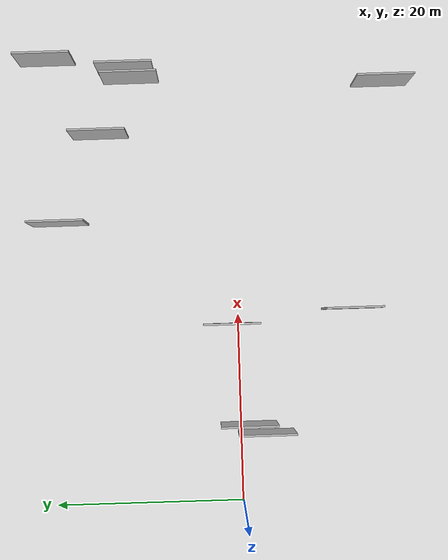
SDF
<sdf version="1.6">
 <world name="default">
  <scene>
   <sky><clouds><speed>12</speed></clouds></sky>
   <ambient>0.4 0.4 0.4 1</ambient>
   <background>0.7 0.7 0.7 1</background>
   <shadows>1</shadows>
  </scene>
  <gravity>0 0 -9.8066</gravity>
  <magnetic_field>6e-06 2.3e-05 -4.2e-05</magnetic_field>
  <physics default="0" name="default_physics" type="ode">
   <ode>
    <solver>
     <type>quick</type>
     <iters>10</iters>
     <sor>1.0</sor>
     <use_dynamic_moi_rescaling>0</use_dynamic_moi_rescaling>
    </solver>
    <constraints>
     <cfm>0</cfm>
     <erp>0.2</erp>
     <contact_max_correcting_vel>100</contact_max_correcting_vel>
     <contact_surface_layer>0.001</contact_surface_layer>
    </constraints>
   </ode>
   <max_step_size>0.004</max_step_size>
   <real_time_factor>1</real_time_factor>
   <real_time_update_rate>250</real_time_update_rate>
  </physics>
  <light name="sun" type="directional">
   <pose>0 0 10 0 0 0</pose>
   <diffuse>0.8 0.8 0.8 1</diffuse>
   <specular>0.2 0.2 0.2 1</specular>
   <attenuation>
    <range>1000</range>
    <constant>0.9</constant>
    <linear>0.01</linear>
    <quadratic>0.001</quadratic>
   </attenuation>
   <direction>-0.5 0.1 -0.9</direction>
  </light>
  <model name="grey_wall_1">
   <static>1</static>
   <pose>47.7840 19.8525 0.0 0.000000 0.000000 1.570796</pose>
   <link name="link">
    <pose>0 0 3.00 0 0 0</pose>
    <collision name="collision"><geometry><box><size>6.00 0.2 6.00</size></box></geometry></collision>
    <visual name="visual">
     <cast_shadows>0</cast_shadows>
     <geometry><box><size>6.00 0.2 6.00</size></box></geometry>
     <material>
      <script>
       <uri>model://HANNAS_wall/materials/scripts</uri>
       <uri>model://HANNAS_wall/materials/textures</uri>
       <name>vrc/HANNAS_wall</name>
      </script>
     </material>
    </visual>
   </link>
  </model>
  <model name="grey_wall_2">
   <static>1</static>
   <pose>45.5725 10.8438 0.0 0.000000 0.000000 1.570796</pose>
   <link name="link">
    <pose>0 0 3.00 0 0 0</pose>
    <collision name="collision"><geometry><box><size>6.00 0.2 6.00</size></box></geometry></collision>
    <visual name="visual">
     <cast_shadows>0</cast_shadows>
     <geometry><box><size>6.00 0.2 6.00</size></box></geometry>
     <material>
      <script>
       <uri>model://HANNAS_wall/materials/scripts</uri>
       <uri>model://HANNAS_wall/materials/textures</uri>
       <name>vrc/HANNAS_wall</name>
      </script>
     </material>
    </visual>
   </link>
  </model>
  <model name="grey_wall_3">
   <static>1</static>
   <pose>20.3226 -12.0446 0.0 0.000000 0.000000 1.570796</pose>
   <link name="link">
    <pose>0 0 3.00 0 0 0</pose>
    <collision name="collision"><geometry><box><size>6.00 0.2 6.00</size></box></geometry></collision>
    <visual name="visual">
     <cast_shadows>0</cast_shadows>
     <geometry><box><size>6.00 0.2 6.00</size></box></geometry>
     <material>
      <script>
       <uri>model://HANNAS_wall/materials/scripts</uri>
       <uri>model://HANNAS_wall/materials/textures</uri>
       <name>vrc/HANNAS_wall</name>
      </script>
     </material>
    </visual>
   </link>
  </model>
  <model name="grey_wall_4">
   <static>1</static>
   <pose>18.9882 0.7678 0.0 0.000000 0.000000 1.570796</pose>
   <link name="link">
    <pose>0 0 3.00 0 0 0</pose>
    <collision name="collision"><geometry><box><size>6.00 0.2 6.00</size></box></geometry></collision>
    <visual name="visual">
     <cast_shadows>0</cast_shadows>
     <geometry><box><size>6.00 0.2 6.00</size></box></geometry>
     <material>
      <script>
       <uri>model://HANNAS_wall/materials/scripts</uri>
       <uri>model://HANNAS_wall/materials/textures</uri>
       <name>vrc/HANNAS_wall</name>
      </script>
     </material>
    </visual>
   </link>
  </model>
  <model name="grey_wall_5">
   <static>1</static>
   <pose>44.4521 -16.0047 0.0 0.000000 0.000000 1.570796</pose>
   <link name="link">
    <pose>0 0 3.00 0 0 0</pose>
    <collision name="collision"><geometry><box><size>6.00 0.2 6.00</size></box></geometry></collision>
    <visual name="visual">
     <cast_shadows>0</cast_shadows>
     <geometry><box><size>6.00 0.2 6.00</size></box></geometry>
     <material>
      <script>
       <uri>model://HANNAS_wall/materials/scripts</uri>
       <uri>model://HANNAS_wall/materials/textures</uri>
       <name>vrc/HANNAS_wall</name>
      </script>
     </material>
    </visual>
   </link>
  </model>
  <model name="grey_wall_6">
   <static>1</static>
   <pose>30.2181 18.8475 0.0 0.000000 0.000000 1.570796</pose>
   <link name="link">
    <pose>0 0 3.00 0 0 0</pose>
    <collision name="collision"><geometry><box><size>6.00 0.2 6.00</size></box></geometry></collision>
    <visual name="visual">
     <cast_shadows>0</cast_shadows>
     <geometry><box><size>6.00 0.2 6.00</size></box></geometry>
     <material>
      <script>
       <uri>model://HANNAS_wall/materials/scripts</uri>
       <uri>model://HANNAS_wall/materials/textures</uri>
       <name>vrc/HANNAS_wall</name>
      </script>
     </material>
    </visual>
   </link>
  </model>
  <model name="grey_wall_7">
   <static>1</static>
   <pose>46.5866 11.3165 0.0 0.000000 0.000000 1.570796</pose>
   <link name="link">
    <pose>0 0 3.00 0 0 0</pose>
    <collision name="collision"><geometry><box><size>6.00 0.2 6.00</size></box></geometry></collision>
    <visual name="visual">
     <cast_shadows>0</cast_shadows>
     <geometry><box><size>6.00 0.2 6.00</size></box></geometry>
     <material>
      <script>
       <uri>model://HANNAS_wall/materials/scripts</uri>
       <uri>model://HANNAS_wall/materials/textures</uri>
       <name>vrc/HANNAS_wall</name>
      </script>
     </material>
    </visual>
   </link>
  </model>
  <model name="grey_wall_8">
   <static>1</static>
   <pose>8.3588 -0.7776 0.0 0.000000 0.000000 1.570796</pose>
   <link name="link">
    <pose>0 0 3.00 0 0 0</pose>
    <collision name="collision"><geometry><box><size>6.00 0.2 6.00</size></box></geometry></collision>
    <visual name="visual">
     <cast_shadows>0</cast_shadows>
     <geometry><box><size>6.00 0.2 6.00</size></box></geometry>
     <material>
      <script>
       <uri>model://HANNAS_wall/materials/scripts</uri>
       <uri>model://HANNAS_wall/materials/textures</uri>
       <name>vrc/HANNAS_wall</name>
      </script>
     </material>
    </visual>
   </link>
  </model>
  <model name="grey_wall_9">
   <static>1</static>
   <pose>7.4568 -2.6143 0.0 0.000000 0.000000 1.570796</pose>
   <link name="link">
    <pose>0 0 3.00 0 0 0</pose>
    <collision name="collision"><geometry><box><size>6.00 0.2 6.00</size></box></geometry></collision>
    <visual name="visual">
     <cast_shadows>0</cast_shadows>
     <geometry><box><size>6.00 0.2 6.00</size></box></geometry>
     <material>
      <script>
       <uri>model://HANNAS_wall/materials/scripts</uri>
       <uri>model://HANNAS_wall/materials/textures</uri>
       <name>vrc/HANNAS_wall</name>
      </script>
     </material>
    </visual>
   </link>
  </model>
  <model name="grey_wall_10">
   <static>1</static>
   <pose>39.5909 14.2910 0.0 0.000000 0.000000 1.570796</pose>
   <link name="link">
    <pose>0 0 3.00 0 0 0</pose>
    <collision name="collision"><geometry><box><size>6.00 0.2 6.00</size></box></geometry></collision>
    <visual name="visual">
     <cast_shadows>0</cast_shadows>
     <geometry><box><size>6.00 0.2 6.00</size></box></geometry>
     <material>
      <script>
       <uri>model://HANNAS_wall/materials/scripts</uri>
       <uri>model://HANNAS_wall/materials/textures</uri>
       <name>vrc/HANNAS_wall</name>
      </script>
     </material>
    </visual>
   </link>
  </model>
 </world>
</sdf>
